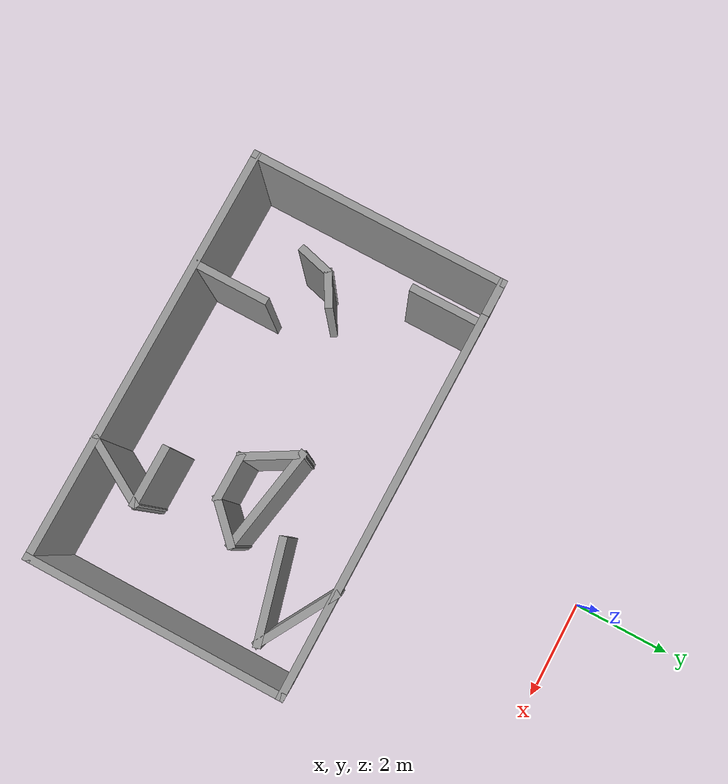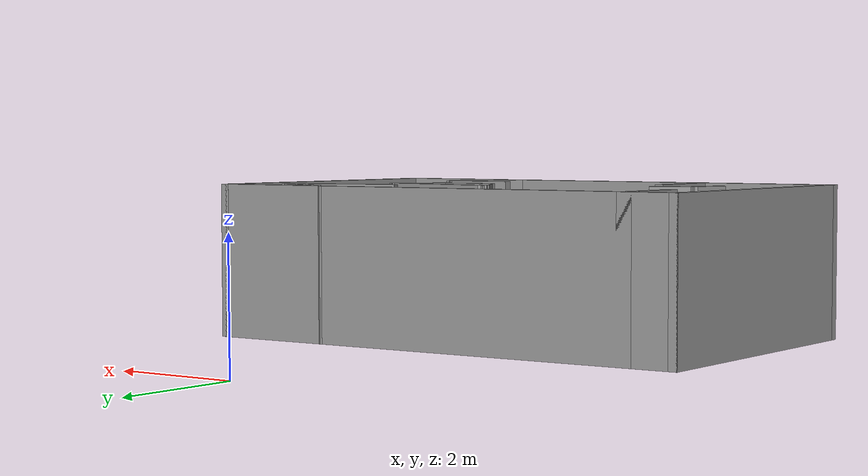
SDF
<?xml version='1.0'?>
<sdf version='1.6'>
  <model name='Untitled'>
    <pose frame=''>-0.224406 -6.86268 0 0 -0 0</pose>
    <link name='Wall_23'>
      <collision name='Wall_23_Collision'>
        <geometry>
          <box>
            <size>7.75 0.15 2.5</size>
          </box>
        </geometry>
        <pose frame=''>0 0 1.25 0 -0 0</pose>
      </collision>
      <visual name='Wall_23_Visual'>
        <pose frame=''>0 0 1.25 0 -0 0</pose>
        <geometry>
          <box>
            <size>7.75 0.15 2.5</size>
          </box>
        </geometry>
        <material>
          <script>
            <uri>file://media/materials/scripts/gazebo.material</uri>
            <name>Gazebo/Grey</name>
          </script>
          <ambient>1 1 1 1</ambient>
        </material>
        <meta>
          <layer>0</layer>
        </meta>
      </visual>
      <pose frame=''>0.375 2.53986 0 0 -0 0</pose>
    </link>
    <link name='Wall_24'>
      <collision name='Wall_24_Collision'>
        <geometry>
          <box>
            <size>5.25 0.15 2.5</size>
          </box>
        </geometry>
        <pose frame=''>0 0 1.25 0 -0 0</pose>
      </collision>
      <visual name='Wall_24_Visual'>
        <pose frame=''>0 0 1.25 0 -0 0</pose>
        <geometry>
          <box>
            <size>5.25 0.15 2.5</size>
          </box>
        </geometry>
        <material>
          <script>
            <uri>file://media/materials/scripts/gazebo.material</uri>
            <name>Gazebo/Grey</name>
          </script>
          <ambient>1 1 1 1</ambient>
        </material>
        <meta>
          <layer>0</layer>
        </meta>
      </visual>
      <pose frame=''>4.175 -0.010139 0 0 -0 -1.5708</pose>
    </link>
    <link name='Wall_25'>
      <collision name='Wall_25_Collision'>
        <geometry>
          <box>
            <size>8.5 0.15 2.5</size>
          </box>
        </geometry>
        <pose frame=''>0 0 1.25 0 -0 0</pose>
      </collision>
      <visual name='Wall_25_Visual'>
        <pose frame=''>0 0 1.25 0 -0 0</pose>
        <geometry>
          <box>
            <size>8.5 0.15 2.5</size>
          </box>
        </geometry>
        <material>
          <script>
            <uri>file://media/materials/scripts/gazebo.material</uri>
            <name>Gazebo/Grey</name>
          </script>
          <ambient>1 1 1 1</ambient>
        </material>
        <meta>
          <layer>0</layer>
        </meta>
      </visual>
      <pose frame=''>0 -2.56014 0 0 -0 3.14159</pose>
    </link>
    <link name='Wall_26'>
      <collision name='Wall_26_Collision'>
        <geometry>
          <box>
            <size>5.25 0.15 2.5</size>
          </box>
        </geometry>
        <pose frame=''>0 0 1.25 0 -0 0</pose>
      </collision>
      <visual name='Wall_26_Visual'>
        <pose frame=''>0 0 1.25 0 -0 0</pose>
        <geometry>
          <box>
            <size>5.25 0.15 2.5</size>
          </box>
        </geometry>
        <material>
          <script>
            <uri>file://media/materials/scripts/gazebo.material</uri>
            <name>Gazebo/Grey</name>
          </script>
          <ambient>1 1 1 1</ambient>
        </material>
        <meta>
          <layer>0</layer>
        </meta>
      </visual>
      <pose frame=''>-4.175 -0.010139 0 0 -0 1.5708</pose>
    </link>
    <link name='Wall_27'>
      <collision name='Wall_27_Collision'>
        <geometry>
          <box>
            <size>1 0.15 2.5</size>
          </box>
        </geometry>
        <pose frame=''>0 0 1.25 0 -0 0</pose>
      </collision>
      <visual name='Wall_27_Visual'>
        <pose frame=''>0 0 1.25 0 -0 0</pose>
        <geometry>
          <box>
            <size>1 0.15 2.5</size>
          </box>
        </geometry>
        <material>
          <script>
            <uri>file://media/materials/scripts/gazebo.material</uri>
            <name>Gazebo/Grey</name>
          </script>
          <ambient>1 1 1 1</ambient>
        </material>
        <meta>
          <layer>0</layer>
        </meta>
      </visual>
      <pose frame=''>-3.75 2.53986 0 0 -0 0</pose>
    </link>
    <link name='Wall_28'>
      <collision name='Wall_28_Collision'>
        <geometry>
          <box>
            <size>1.5 0.15 2.5</size>
          </box>
        </geometry>
        <pose frame=''>0 0 1.25 0 -0 0</pose>
      </collision>
      <visual name='Wall_28_Visual'>
        <pose frame=''>0 0 1.25 0 -0 0</pose>
        <geometry>
          <box>
            <size>1.5 0.15 2.5</size>
          </box>
        </geometry>
        <material>
          <script>
            <uri>file://media/materials/scripts/gazebo.material</uri>
            <name>Gazebo/Grey</name>
          </script>
          <ambient>1 1 1 1</ambient>
        </material>
        <meta>
          <layer>0</layer>
        </meta>
      </visual>
      <pose frame=''>-3.325 1.86486 0 0 -0 -1.5708</pose>
    </link>
    <link name='Wall_30'>
      <collision name='Wall_30_Collision'>
        <geometry>
          <box>
            <size>1.5 0.15 2.5</size>
          </box>
        </geometry>
        <pose frame=''>0 0 1.25 0 -0 0</pose>
      </collision>
      <visual name='Wall_30_Visual'>
        <pose frame=''>0 0 1.25 0 -0 0</pose>
        <geometry>
          <box>
            <size>1.5 0.15 2.5</size>
          </box>
        </geometry>
        <material>
          <script>
            <uri>file://media/materials/scripts/gazebo.material</uri>
            <name>Gazebo/Grey</name>
          </script>
          <ambient>1 1 1 1</ambient>
        </material>
        <meta>
          <layer>0</layer>
        </meta>
      </visual>
      <pose frame=''>-1.8585 -1.80403 0 0 -0 1.5708</pose>
    </link>
    <link name='Wall_32'>
      <collision name='Wall_32_Collision'>
        <geometry>
          <box>
            <size>1.25 0.15 2.5</size>
          </box>
        </geometry>
        <pose frame=''>0 0 1.25 0 -0 0</pose>
      </collision>
      <visual name='Wall_32_Visual'>
        <pose frame=''>0 0 1.25 0 -0 0</pose>
        <geometry>
          <box>
            <size>1.25 0.15 2.5</size>
          </box>
        </geometry>
        <material>
          <script>
            <uri>file://media/materials/scripts/gazebo.material</uri>
            <name>Gazebo/Grey</name>
          </script>
          <ambient>1 1 1 1</ambient>
        </material>
        <meta>
          <layer>0</layer>
        </meta>
      </visual>
      <pose frame=''>0.560935 0.360167 0 0 -0 -1.0472</pose>
    </link>
    <link name='Wall_33'>
      <collision name='Wall_33_Collision'>
        <geometry>
          <box>
            <size>1 0.15 2.5</size>
          </box>
        </geometry>
        <pose frame=''>0 0 1.25 0 -0 0</pose>
      </collision>
      <visual name='Wall_33_Visual'>
        <pose frame=''>0 0 1.25 0 -0 0</pose>
        <geometry>
          <box>
            <size>1 0.15 2.5</size>
          </box>
        </geometry>
        <material>
          <script>
            <uri>file://media/materials/scripts/gazebo.material</uri>
            <name>Gazebo/Grey</name>
          </script>
          <ambient>1 1 1 1</ambient>
        </material>
        <meta>
          <layer>0</layer>
        </meta>
      </visual>
      <pose frame=''>1.26093 -0.116147 0 0 -0 0</pose>
    </link>
    <link name='Wall_34'>
      <collision name='Wall_34_Collision'>
        <geometry>
          <box>
            <size>1 0.15 2.5</size>
          </box>
        </geometry>
        <pose frame=''>0 0 1.25 0 -0 0</pose>
      </collision>
      <visual name='Wall_34_Visual'>
        <pose frame=''>0 0 1.25 0 -0 0</pose>
        <geometry>
          <box>
            <size>1 0.15 2.5</size>
          </box>
        </geometry>
        <material>
          <script>
            <uri>file://media/materials/scripts/gazebo.material</uri>
            <name>Gazebo/Grey</name>
          </script>
          <ambient>1 1 1 1</ambient>
        </material>
        <meta>
          <layer>0</layer>
        </meta>
      </visual>
      <pose frame=''>1.98646 0.184374 0 0 -0 0.785398</pose>
    </link>
    <link name='Wall_35'>
      <collision name='Wall_35_Collision'>
        <geometry>
          <box>
            <size>2.18169 0.15 2.5</size>
          </box>
        </geometry>
        <pose frame=''>0 0 1.25 0 -0 0</pose>
      </collision>
      <visual name='Wall_35_Visual'>
        <pose frame=''>0 0 1.25 0 -0 0</pose>
        <geometry>
          <box>
            <size>2.18169 0.15 2.5</size>
          </box>
        </geometry>
        <material>
          <script>
            <uri>file://media/materials/scripts/gazebo.material</uri>
            <name>Gazebo/Grey</name>
          </script>
          <ambient>1 1 1 1</ambient>
        </material>
        <meta>
          <layer>0</layer>
        </meta>
      </visual>
      <pose frame=''>1.28645 0.660688 0 0 -0 2.96767</pose>
    </link>
    <link name='Wall_37'>
      <collision name='Wall_37_Collision'>
        <geometry>
          <box>
            <size>1.75 0.15 2.5</size>
          </box>
        </geometry>
        <pose frame=''>0 0 1.25 0 -0 0</pose>
      </collision>
      <visual name='Wall_37_Visual'>
        <pose frame=''>0 0 1.25 0 -0 0</pose>
        <geometry>
          <box>
            <size>1.75 0.15 2.5</size>
          </box>
        </geometry>
        <material>
          <script>
            <uri>file://media/materials/scripts/gazebo.material</uri>
            <name>Gazebo/Grey</name>
          </script>
          <ambient>1 1 1 1</ambient>
        </material>
        <meta>
          <layer>0</layer>
        </meta>
      </visual>
      <pose frame=''>2.87985 2.13986 0 0 -0 -0.523599</pose>
    </link>
    <link name='Wall_38'>
      <collision name='Wall_38_Collision'>
        <geometry>
          <box>
            <size>2 0.15 2.5</size>
          </box>
        </geometry>
        <pose frame=''>0 0 1.25 0 -0 0</pose>
      </collision>
      <visual name='Wall_38_Visual'>
        <pose frame=''>0 0 1.25 0 -0 0</pose>
        <geometry>
          <box>
            <size>2 0.15 2.5</size>
          </box>
        </geometry>
        <material>
          <script>
            <uri>file://media/materials/scripts/gazebo.material</uri>
            <name>Gazebo/Grey</name>
          </script>
          <ambient>1 1 1 1</ambient>
        </material>
        <meta>
          <layer>0</layer>
        </meta>
      </visual>
      <pose frame=''>2.67919 1.50045 0 0 -0 -2.87979</pose>
    </link>
    <link name='Wall_40'>
      <collision name='Wall_40_Collision'>
        <geometry>
          <box>
            <size>1.5 0.15 2.5</size>
          </box>
        </geometry>
        <pose frame=''>0 0 1.25 0 -0 0</pose>
      </collision>
      <visual name='Wall_40_Visual'>
        <pose frame=''>0 0 1.25 0 -0 0</pose>
        <geometry>
          <box>
            <size>1.5 0.15 2.5</size>
          </box>
        </geometry>
        <material>
          <script>
            <uri>file://media/materials/scripts/gazebo.material</uri>
            <name>Gazebo/Grey</name>
          </script>
          <ambient>1 1 1 1</ambient>
        </material>
        <meta>
          <layer>0</layer>
        </meta>
      </visual>
      <pose frame=''>2.1291 -1.95529 0 0 -0 1.0472</pose>
    </link>
    <link name='Wall_41'>
      <collision name='Wall_41_Collision'>
        <geometry>
          <box>
            <size>1.25 0.15 2.5</size>
          </box>
        </geometry>
        <pose frame=''>0 0 1.25 0 -0 0</pose>
      </collision>
      <visual name='Wall_41_Visual'>
        <pose frame=''>0 0 1.25 0 -0 0</pose>
        <geometry>
          <box>
            <size>1.25 0.15 2.5</size>
          </box>
        </geometry>
        <material>
          <script>
            <uri>file://media/materials/scripts/gazebo.material</uri>
            <name>Gazebo/Grey</name>
          </script>
          <ambient>1 1 1 1</ambient>
        </material>
        <meta>
          <layer>0</layer>
        </meta>
      </visual>
      <pose frame=''>1.9166 -1.37073 0 0 -0 3.14159</pose>
    </link>
    <link name='Wall_43'>
      <collision name='Wall_43_Collision'>
        <geometry>
          <box>
            <size>0.75 0.15 2.5</size>
          </box>
        </geometry>
        <pose frame=''>0 0 1.25 0 -0 0</pose>
      </collision>
      <visual name='Wall_43_Visual'>
        <pose frame=''>0 0 1.25 0 -0 0</pose>
        <geometry>
          <box>
            <size>0.75 0.15 2.5</size>
          </box>
        </geometry>
        <material>
          <script>
            <uri>file://media/materials/scripts/gazebo.material</uri>
            <name>Gazebo/Grey</name>
          </script>
          <ambient>1 1 1 1</ambient>
        </material>
        <meta>
          <layer>0</layer>
        </meta>
      </visual>
      <pose frame=''>-2.93672 -0.637956 0 0 -0 1.309</pose>
    </link>
    <link name='Wall_44'>
      <collision name='Wall_44_Collision'>
        <geometry>
          <box>
            <size>0.75 0.15 2.5</size>
          </box>
        </geometry>
        <pose frame=''>0 0 1.25 0 -0 0</pose>
      </collision>
      <visual name='Wall_44_Visual'>
        <pose frame=''>0 0 1.25 0 -0 0</pose>
        <geometry>
          <box>
            <size>0.75 0.15 2.5</size>
          </box>
        </geometry>
        <material>
          <script>
            <uri>file://media/materials/scripts/gazebo.material</uri>
            <name>Gazebo/Grey</name>
          </script>
          <ambient>1 1 1 1</ambient>
        </material>
        <meta>
          <layer>0</layer>
        </meta>
      </visual>
      <pose frame=''>-2.59926 -0.198178 0 0 -0 0.523599</pose>
    </link>
    <static>1</static>
  </model>
</sdf>
